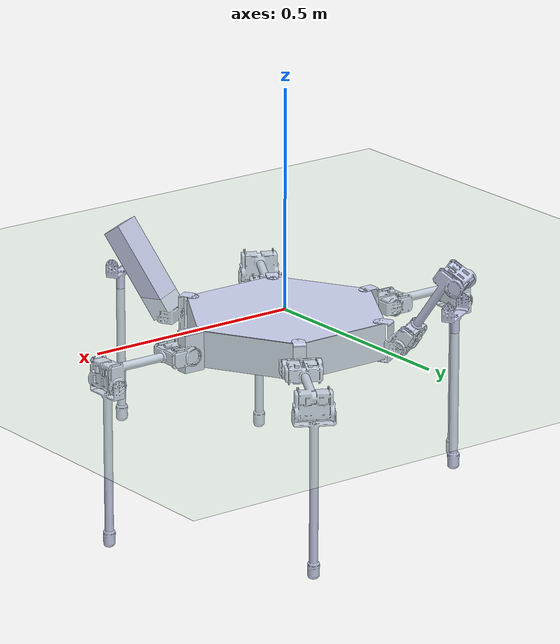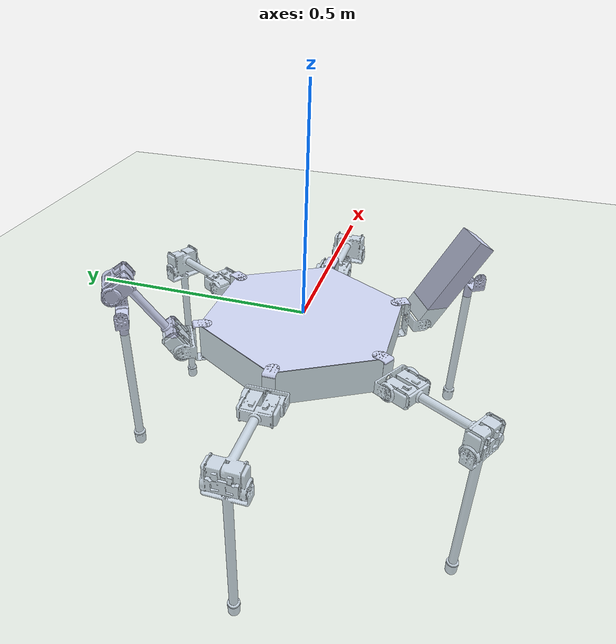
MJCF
<mujoco model="silvia">
    <compiler angle="radian" coordinate="local" inertiafromgeom="true" meshdir="meshes/" />
    <option gravity="0 0 -9.81" integrator="RK4" timestep="0.02" o_solref="0.02 1.2"/>
    <option>
        <flag override = "enable" />
    </option>
    <size njmax="500" nconmax="100" nstack="300000" />

    <default>
        <joint armature="1" limited="true"/>
        <geom conaffinity="1" condim="3" density="1" friction="0 0 0" margin="0.01" rgba="0.8 0.6 0.4 1"/>
    </default>

    <!-- friction="1.5 1.2 0" -->

    <asset>
        <texture builtin="gradient" height="100" rgb1="1 1 1" rgb2="0 0 0" type="skybox" width="100"/>
        <texture builtin="flat" height="1278" mark="cross" markrgb="1 1 1" name="texgeom" random="0.01" rgb1="0.8 0.6 0.4" rgb2="0.8 0.6 0.4" type="cube" width="127"/>
        <texture builtin="checker" height="100" name="texplane" rgb1="0 0 0" rgb2="0.8 0.8 0.8" type="2d" width="100"/>
        <material name="MatPlane" reflectance="0.5" shininess="1" specular="1" texrepeat="60 60" texture="texplane"/>
        <material name="geom" texture="texgeom" texuniform="true"/>
        <mesh name="torso" file="torso2.STL" />
        <mesh name="RF_Coxa" file="RF_Coxa.STL" />
        <mesh name="RF_Femur" file="RF_Femur.STL" />
        <mesh name="RF_Tibia" file="RF_Tibia.STL" />
        <mesh name="RM_Coxa" file="RM_Coxa.STL" />
        <mesh name="RM_Femur" file="RM_Femur.STL" />
        <mesh name="RM_Tibia" file="RM_Tibia.STL" />
        <mesh name="RR_Coxa" file="RR_Coxa.STL" />
        <mesh name="RR_Femur" file="RR_Femur.STL" />
        <mesh name="RR_Tibia" file="RR_Tibia.STL" />
        <mesh name="LR_Coxa" file="LR_Coxa.STL" />
        <mesh name="LR_Femur" file="LR_Femur.STL" />
        <mesh name="LR_Tibia" file="LR_Tibia.STL" />
        <mesh name="LM_Coxa" file="LM_Coxa.STL" />
        <mesh name="LM_Femur" file="LM_Femur.STL" />
        <mesh name="LM_Tibia" file="LM_Tibia.STL" />
        <mesh name="LF_Coxa" file="LF_Coxa.STL" />
        <mesh name="LF_Femur" file="LF_Femur.STL" />
        <mesh name="LF_Tibia" file="LF_Tibia.STL" />
    </asset>

    <worldbody>
        <light cutoff="100" diffuse="1 1 1" dir="-0 0 -1.3" directional="true" exponent="1" pos="0 0 1.3" specular=".1 .1 .1"/>
        <geom conaffinity="1" condim="3" material="MatPlane" name="floor" pos="0 0 0" rgba="0.8 0.9 0.8 1" size="40 40 40" type="plane"/>

        <body name="torso" pos="0 0 0">
            <camera name="track" mode="trackcom" pos="0 -3 0.3" xyaxes="1 0 0 0 0 1"/>
            <inertial pos="0 0 -0.0425442" quat="0.5 0.5 -0.5 0.5" mass="12.092" diaginertia="0.280065 0.149173 0.147817" />
            <geom type="mesh" rgba="0.792157 0.819608 0.933333 1" condim="3" mesh="torso" />
            <joint armature="0" damping="0" limited="false" margin="0.01" name="root" pos="0 0 0" type="free" />

            <body name="RF_Coxa" pos="0.110395 0.191206 -0.0411" quat="0.866025 0 0 0.5">
                <inertial pos="0.034 0 0" quat="0.707107 0 0 0.707107" mass="0.1274" diaginertia="0.000114458 9.62401e-05 3.48651e-05" />
                <joint name="RF_Coxa" pos="0 0 0" axis="0 0 1" range="-3.1415927 3.1415927" type="hinge"/>
                <geom type="mesh" rgba="0.792157 0.819608 0.933333 1" mesh="RF_Coxa" />
                <body name="RF_Femur" pos="0.057 0.0005 0" quat="0.707107 0.707107 0 0">
                    <inertial pos="0.10975 0 0" quat="0.5 0.5 0.5 0.5" mass="0.750031" diaginertia="0.00346297 0.0031124 0.000552588" />
                    <joint name="RF_Femur" pos="0 0 0" axis="0 0 1" range="-3.1415927 3.1415927" type="hinge"/>
                    <geom type="mesh" rgba="0.792157 0.819608 0.933333 1" mesh="RF_Femur" />
                    <body name="RF_Tibia" pos="0.1975 -0.0265 -0.0005">
                        <inertial pos="0 -0.13171 0" quat="0.707107 0.707107 0 0" mass="0.272494" diaginertia="0.00410734 0.00404605 8.81243e-05" />
                        <joint name="RF_Tibia" pos="0 0 0" axis="0 0 1" range="-3.1415927 3.1415927" type="hinge"/>
                        <geom type="mesh" friction="1.5 1.2 0" rgba="0.792157 0.819608 0.933333 1" mesh="RF_Tibia" />
                    </body>
                </body>
            </body>
            <body name="RM_Coxa" pos="0.221137 -0.000204145 -0.0411">
                <inertial pos="0.034 0 0" quat="0.707107 0 0 0.707107" mass="0.1274" diaginertia="0.000114458 9.62401e-05 3.48651e-05" />
                <joint name="RM_Coxa" pos="0 0 0" axis="0 0 1" range="-3.1415927 3.1415927" type="hinge"/>
                <geom type="mesh" rgba="0.792157 0.819608 0.933333 1" mesh="RM_Coxa" />
                <body name="RM_Femur" pos="0.057 0.0005 0" quat="0.707107 0.707107 0 0">
                    <inertial pos="0.10975 0 0" quat="0.5 0.5 0.5 0.5" mass="0.750031" diaginertia="0.00346297 0.0031124 0.000552588" />
                    <joint name="RM_Femur" pos="0 0 0" axis="0 0 1" range="-3.1415927 3.1415927" type="hinge"/>
                    <geom type="mesh" rgba="0.792157 0.819608 0.933333 1" mesh="RM_Femur" />
                    <body name="RM_Tibia" pos="0.1975 -0.0265 -0.0005">
                        <inertial pos="0 -0.13171 0" quat="0.707107 0.707107 0 0" mass="0.272494" diaginertia="0.00410734 0.00404605 8.81243e-05" />
                        <joint name="RM_Tibia" pos="0 0 0" axis="0 0 1" range="-3.1415927 3.1415927" type="hinge"/>
                        <geom type="mesh" rgba="0.792157 0.819608 0.933333 1" mesh="RM_Tibia" />
                    </body>
                </body>
            </body>
            <body name="RR_Coxa" pos="0.110741 -0.191814 -0.0411" quat="0.866025 0 0 -0.5">
                <inertial pos="0.034 0 0" quat="0.707107 0 0 0.707107" mass="0.1274" diaginertia="0.000114458 9.62401e-05 3.48651e-05" />
                <geom name="RR_Coxa" pos="0 0 0" type="mesh" rgba="0.792157 0.819608 0.933333 1" mesh="RR_Coxa" />
                <body name="RR_Femur" pos="0.057 0.0005 0" quat="0.707107 0.707107 0 0">
                    <inertial pos="0.10975 0 0" quat="0.5 0.5 0.5 0.5" mass="0.750031" diaginertia="0.00346297 0.0031124 0.000552588" />
                    <geom name="RR_Femur" pos="0 0 0" type="mesh" rgba="0.792157 0.819608 0.933333 1" euler="0 0 1" mesh="RR_Femur" />
                    <body name="RR_Tibia" pos="0.1975 -0.0265 -0.0005">
                        <inertial pos="0 -0.13171 0" quat="0.707107 0.707107 0 0" mass="0.272494" diaginertia="0.00410734 0.00404605 8.81243e-05" />
                        <geom name="RR_Tibia" pos="-0.08 0.13 0" type="mesh" rgba="0.792157 0.819608 0.933333 1" mesh="RR_Tibia" />
                    </body>
                </body>
            </body>
            <body name="LR_Coxa" pos="-0.110395 -0.192014 -0.0411" quat="0.5 0 0 -0.866025">
                <inertial pos="0.034 0 0" quat="0.707107 0 0 0.707107" mass="0.1274" diaginertia="0.000114458 9.62401e-05 3.48651e-05" />
                <joint name="LR_Coxa" pos="0 0 0" axis="0 0 1" range="-3.1415927 3.1415927" type="hinge"/>
                <geom type="mesh" rgba="0.792157 0.819608 0.933333 1" mesh="LR_Coxa" />
                <body name="LR_Femur" pos="0.057 0.0005 0" quat="0.707107 0.707107 0 0">
                    <inertial pos="0.10975 0 0" quat="0.5 0.5 0.5 0.5" mass="0.750031" diaginertia="0.00346297 0.0031124 0.000552588" />
                    <joint name="LR_Femur" pos="0 0 0" axis="0 0 1" range="-3.1415927 3.1415927" type="hinge"/>
                    <geom type="mesh" rgba="0.792157 0.819608 0.933333 1" mesh="LR_Femur" />
                    <body name="LR_Tibia" pos="0.1975 -0.0265 -0.0005">
                        <inertial pos="0 -0.13171 0" quat="0.707107 0.707107 0 0" mass="0.272494" diaginertia="0.00410734 0.00404605 8.81243e-05" />
                        <joint name="LR_Tibia" pos="0 0 0" axis="0 0 1" range="-3.1415927 3.1415927" type="hinge"/>
                        <geom type="mesh" rgba="0.792157 0.819608 0.933333 1" mesh="LR_Tibia" />
                    </body>
                </body>
            </body>
            <body name="LM_Coxa" pos="-0.221137 -0.000604145 -0.0411" quat="0 0 0 -1">
                <inertial pos="0.034 0 0" quat="0.707107 0 0 0.707107" mass="0.1274" diaginertia="0.000114458 9.62401e-05 3.48651e-05" />
                <joint name="LM_Coxa" pos="0 0 0" axis="0 0 1" range="-3.1415927 3.1415927" type="hinge"/>
                <geom type="mesh" rgba="0.792157 0.819608 0.933333 1" mesh="LM_Coxa" />
                <body name="LM_Femur" pos="0.057 0.0005 0" quat="0.707107 0.707107 0 0">
                    <inertial pos="0.10975 0 0" quat="0.5 0.5 0.5 0.5" mass="0.750031" diaginertia="0.00346297 0.0031124 0.000552588" />
                    <joint name="LM_Femur" pos="0 0 0" axis="0 0 1" range="-3.1415927 3.1415927" type="hinge"/>
                    <geom type="mesh" rgba="0.792157 0.819608 0.933333 1" mesh="LM_Femur" />
                    <body name="LM_Tibia" pos="0.1975 -0.0265 -0.0005">
                        <inertial pos="0 -0.13171 0" quat="0.707107 0.707107 0 0" mass="0.272494" diaginertia="0.00410734 0.00404605 8.81243e-05" />
                        <joint name="LM_Tibia" pos="0 0 0" axis="0 0 1" range="-3.1415927 3.1415927" type="hinge"/>
                        <geom type="mesh" rgba="0.792157 0.819608 0.933333 1" mesh="LM_Tibia" />
                    </body>
                </body>
            </body>
            <body name="LF_Coxa" pos="-0.110741 0.191006 -0.0411" quat="0.5 0 0 0.866025">
                <inertial pos="0.034 0 0" quat="0.707107 0 0 0.707107" mass="0.1274" diaginertia="0.000114458 9.62401e-05 3.48651e-05" />
                <geom name="LF_Coxa" pos="0 0 0" type="mesh" rgba="0.792157 0.819608 0.933333 1"  mesh="LF_Coxa" />
                <body name="LF_Femur" pos="0.057 0.0005 0" quat="0.707107 0.707107 0 0">
                    <inertial pos="0.10975 0 0" quat="0.5 0.5 0.5 0.5" mass="0.750031" diaginertia="0.00346297 0.0031124 0.000552588" />
                    <geom name="LF_Femur" pos="0 0 0" euler="0 0 1" type="mesh" rgba="0.792157 0.819608 0.933333 1" mesh="LF_Femur" />
                    <body name="LF_Tibia" pos="0.1975 -0.0265 -0.0005">
                        <inertial pos="0 -0.13171 0" quat="0.707107 0.707107 0 0" mass="0.272494" diaginertia="0.00410734 0.00404605 8.81243e-05" />
                        <geom name="LF_Tibia" pos="-0.08 0.13 0" type="mesh" rgba="0.792157 0.819608 0.933333 1" mesh="LF_Tibia" />
                    </body>
                </body>
            </body>
        </body>
    </worldbody>
    <actuator>
        <general ctrllimited="true" ctrlrange="-1 1" forcelimited="true" forcerange="-20.0 20.0" joint="RF_Coxa" gear="1" gaintype="fixed" gainprm="62.8" biastype="affine" biasprm="0 -20 -12"/>
        <general ctrllimited="true" ctrlrange="-1 1" forcelimited="true" forcerange="-20.0 20.0" joint="RF_Femur" gear="1" gaintype="fixed" gainprm="62.8" biastype="affine" biasprm="0 -20 -12"/>
        <general ctrllimited="true" ctrlrange="-1 1" forcelimited="true" forcerange="-20.0 20.0" joint="RF_Tibia" gear="1" gaintype="fixed" gainprm="62.8" biastype="affine" biasprm="0 -20 -12"/>

        <general ctrllimited="true" ctrlrange="-1 1" forcelimited="true" forcerange="-20.0 20.0" joint="RM_Coxa" gear="1" gaintype="fixed" gainprm="62.8" biastype="affine" biasprm="0 -20 -12"/>
        <general ctrllimited="true" ctrlrange="-1 1" forcelimited="true" forcerange="-20.0 20.0" joint="RM_Femur" gear="1" gaintype="fixed" gainprm="62.8" biastype="affine" biasprm="0 -20 -12"/>
        <general ctrllimited="true" ctrlrange="-1 1" forcelimited="true" forcerange="-20.0 20.0" joint="RM_Tibia" gear="1" gaintype="fixed" gainprm="62.8" biastype="affine" biasprm="0 -20 -12"/>

        <general ctrllimited="true" ctrlrange="-1 1" forcelimited="true" forcerange="-20.0 20.0" joint="LR_Coxa" gear="1" gaintype="fixed" gainprm="62.8" biastype="affine" biasprm="0 -20 -12"/>
        <general ctrllimited="true" ctrlrange="-1 1" forcelimited="true" forcerange="-20.0 20.0" joint="LR_Femur" gear="1" gaintype="fixed" gainprm="62.8" biastype="affine" biasprm="0 -20 -12"/>
        <general ctrllimited="true" ctrlrange="-1 1" forcelimited="true" forcerange="-20.0 20.0" joint="LR_Tibia" gear="1" gaintype="fixed" gainprm="62.8" biastype="affine" biasprm="0 -20 -12"/>

        <general ctrllimited="true" ctrlrange="-1 1" forcelimited="true" forcerange="-20.0 20.0" joint="LM_Coxa" gear="1" gaintype="fixed" gainprm="62.8" biastype="affine" biasprm="0 -20 -12"/>
        <general ctrllimited="true" ctrlrange="-1 1" forcelimited="true" forcerange="-20.0 20.0" joint="LM_Femur" gear="1" gaintype="fixed" gainprm="62.8" biastype="affine" biasprm="0 -20 -12"/>
        <general ctrllimited="true" ctrlrange="-1 1" forcelimited="true" forcerange="-20.0 20.0" joint="LM_Tibia" gear="1" gaintype="fixed" gainprm="62.8" biastype="affine" biasprm="0 -20 -12"/>

   </actuator>
</mujoco>
